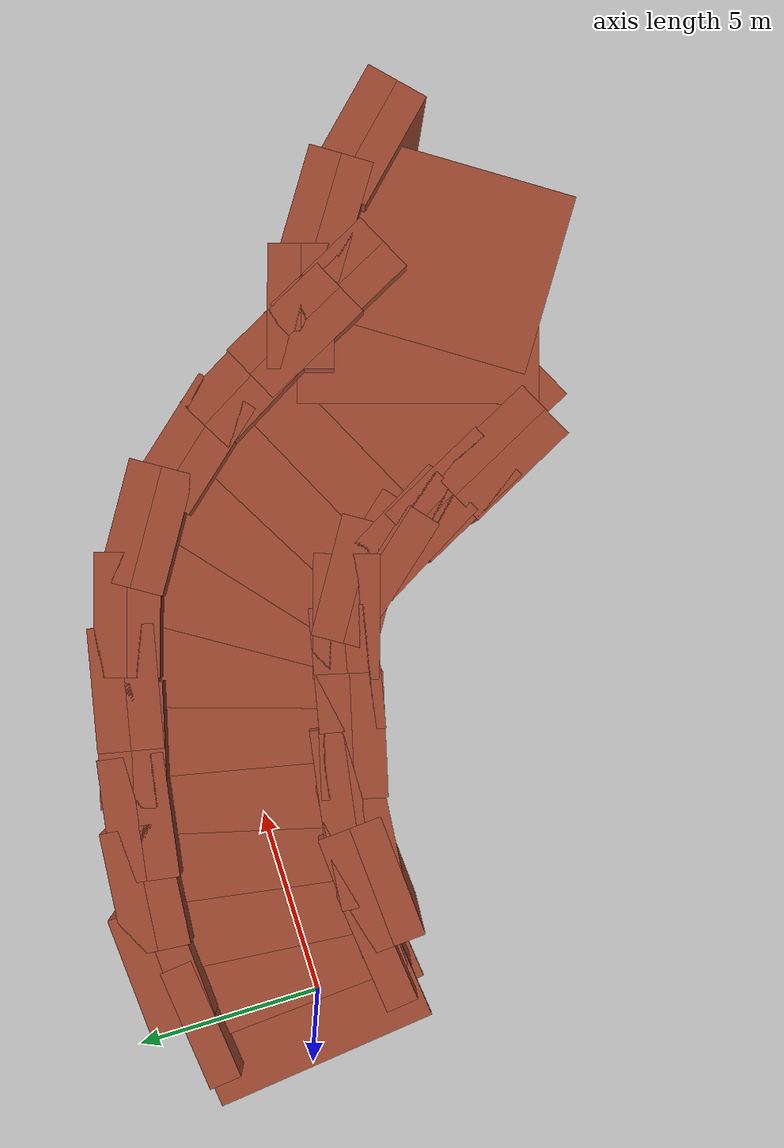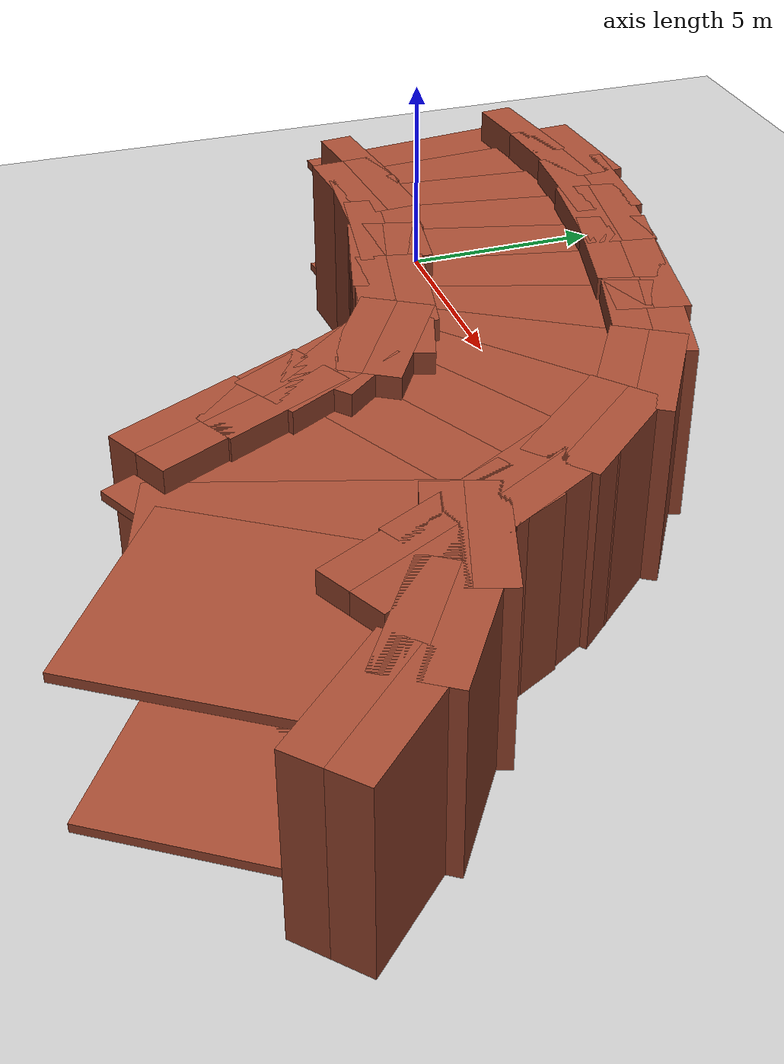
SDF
<sdf version="1.6">
 <world name="procedural_cave_world">
  <include><uri>model://sun</uri></include>
  <include><uri>model://ground_plane</uri></include>
  <model name="procedural_cave">
   <static>true</static>
   <link name="left_wall_0">
    <pose>1.224523597467146 2.4564252081160305 1.5 0 0 0.11573853253283148</pose>
    <collision name="collision"><geometry><box><size>3.0 0.8 5.0</size></box></geometry></collision>
    <visual name="visual">
     <geometry><box><size>3.0 0.8 5.0</size></box></geometry>
     <material>
      <script><uri>file://media/materials/scripts/gazebo.material</uri><name>Gazebo/Bricks</name></script>
     </material>
    </visual>
   </link>
   <link name="right_wall_0">
    <pose>1.7554057102699834 -2.109984273916111 1.5 0 0 0.11573853253283148</pose>
    <collision name="collision"><geometry><box><size>3.0 0.8 5.0</size></box></geometry></collision>
    <visual name="visual">
     <geometry><box><size>3.0 0.8 5.0</size></box></geometry>
     <material>
      <script><uri>file://media/materials/scripts/gazebo.material</uri><name>Gazebo/Bricks</name></script>
     </material>
    </visual>
   </link>
   <link name="ceiling_0">
    <pose>1.4899646538685647 0.17322046709995959 3.1 0 0 0.11573853253283148</pose>
    <collision name="collision"><geometry><box><size>4.5 5.597165580581915 0.2</size></box></geometry></collision>
    <visual name="visual">
     <geometry><box><size>4.5 5.597165580581915 0.2</size></box></geometry>
     <material>
      <script><uri>file://media/materials/scripts/gazebo.material</uri><name>Gazebo/Bricks</name></script>
     </material>
    </visual>
   </link>
   <link name="floor_0">
    <pose>1.4899646538685647 0.17322046709995959 0.1 0 0 0.11573853253283148</pose>
    <collision name="collision"><geometry><box><size>4.5 5.597165580581915 0.2</size></box></geometry></collision>
    <visual name="visual">
     <geometry><box><size>4.5 5.597165580581915 0.2</size></box></geometry>
     <material>
      <script><uri>file://media/materials/scripts/gazebo.material</uri><name>Gazebo/Bricks</name></script>
     </material>
    </visual>
   </link>
   <link name="left_wall_1">
    <pose>2.8282510521473587 2.5573240663752075 1.5 0 0 0.06922987092913153</pose>
    <collision name="collision"><geometry><box><size>3.0 0.8 5.0</size></box></geometry></collision>
    <visual name="visual">
     <geometry><box><size>3.0 0.8 5.0</size></box></geometry>
     <material>
      <script><uri>file://media/materials/scripts/gazebo.material</uri><name>Gazebo/Bricks</name></script>
     </material>
    </visual>
   </link>
   <link name="right_wall_1">
    <pose>3.144491963924351 -2.0033593812342985 1.5 0 0 0.06922987092913153</pose>
    <collision name="collision"><geometry><box><size>3.0 0.8 5.0</size></box></geometry></collision>
    <visual name="visual">
     <geometry><box><size>3.0 0.8 5.0</size></box></geometry>
     <material>
      <script><uri>file://media/materials/scripts/gazebo.material</uri><name>Gazebo/Bricks</name></script>
     </material>
    </visual>
   </link>
   <link name="fill_left_1">
    <pose>2.7729113852297615 3.355407721931096 1.5 0 0 0.06922987092913153</pose>
    <collision name="collision"><geometry><box><size>3.0 0.8 5.0</size></box></geometry></collision>
    <visual name="visual">
     <geometry><box><size>3.0 0.8 5.0</size></box></geometry>
     <material>
      <script><uri>file://media/materials/scripts/gazebo.material</uri><name>Gazebo/Bricks</name></script>
     </material>
    </visual>
   </link>
   <link name="fill_right_1">
    <pose>3.199831630841948 -2.801443036790187 1.5 0 0 0.06922987092913153</pose>
    <collision name="collision"><geometry><box><size>3.0 0.8 5.0</size></box></geometry></collision>
    <visual name="visual">
     <geometry><box><size>3.0 0.8 5.0</size></box></geometry>
     <material>
      <script><uri>file://media/materials/scripts/gazebo.material</uri><name>Gazebo/Bricks</name></script>
     </material>
    </visual>
   </link>
   <link name="ceiling_1">
    <pose>2.986371508035855 0.27698234257045445 3.22 0 0 0.06922987092913153</pose>
    <collision name="collision">
     <geometry><box><size>4.5 5.5716344805311016 0.2</size></box></geometry>
    </collision>
    <visual name="visual">
     <geometry><box><size>4.5 5.5716344805311016 0.2</size></box></geometry>
     <material>
      <script><uri>file://media/materials/scripts/gazebo.material</uri><name>Gazebo/Bricks</name></script>
     </material>
    </visual>
   </link>
   <link name="floor_1">
    <pose>2.986371508035855 0.27698234257045445 0.1 0 0 0.06922987092913153</pose>
    <collision name="collision">
     <geometry><box><size>4.5 5.5716344805311016 0.2</size></box></geometry>
    </collision>
    <visual name="visual">
     <geometry><box><size>4.5 5.5716344805311016 0.2</size></box></geometry>
     <material>
      <script><uri>file://media/materials/scripts/gazebo.material</uri><name>Gazebo/Bricks</name></script>
     </material>
    </visual>
   </link>
   <link name="left_wall_2">
    <pose>4.67265879498337 2.382047039975188 1.5 0 0 -0.08566222407151684</pose>
    <collision name="collision"><geometry><box><size>3.0 0.8 5.0</size></box></geometry></collision>
    <visual name="visual">
     <geometry><box><size>3.0 0.8 5.0</size></box></geometry>
     <material>
      <script><uri>file://media/materials/scripts/gazebo.material</uri><name>Gazebo/Bricks</name></script>
     </material>
    </visual>
   </link>
   <link name="right_wall_2">
    <pose>4.28908392530389 -2.0847548469314092 1.5 0 0 -0.08566222407151684</pose>
    <collision name="collision"><geometry><box><size>3.0 0.8 5.0</size></box></geometry></collision>
    <visual name="visual">
     <geometry><box><size>3.0 0.8 5.0</size></box></geometry>
     <material>
      <script><uri>file://media/materials/scripts/gazebo.material</uri><name>Gazebo/Bricks</name></script>
     </material>
    </visual>
   </link>
   <link name="fill_left_2">
    <pose>4.741104792875937 3.179113627766001 1.5 0 0 -0.08566222407151684</pose>
    <collision name="collision"><geometry><box><size>3.0 0.8 5.0</size></box></geometry></collision>
    <visual name="visual">
     <geometry><box><size>3.0 0.8 5.0</size></box></geometry>
     <material>
      <script><uri>file://media/materials/scripts/gazebo.material</uri><name>Gazebo/Bricks</name></script>
     </material>
    </visual>
   </link>
   <link name="fill_right_2">
    <pose>4.220637927411323 -2.881821434722222 1.5 0 0 -0.08566222407151684</pose>
    <collision name="collision"><geometry><box><size>3.0 0.8 5.0</size></box></geometry></collision>
    <visual name="visual">
     <geometry><box><size>3.0 0.8 5.0</size></box></geometry>
     <material>
      <script><uri>file://media/materials/scripts/gazebo.material</uri><name>Gazebo/Bricks</name></script>
     </material>
    </visual>
   </link>
   <link name="ceiling_2">
    <pose>4.48087136014363 0.14864609652188923 3.2920000000000003 0 0 -0.08566222407151684</pose>
    <collision name="collision"><geometry><box><size>4.5 5.483240878819915 0.2</size></box></geometry></collision>
    <visual name="visual">
     <geometry><box><size>4.5 5.483240878819915 0.2</size></box></geometry>
     <material>
      <script><uri>file://media/materials/scripts/gazebo.material</uri><name>Gazebo/Bricks</name></script>
     </material>
    </visual>
   </link>
   <link name="floor_2">
    <pose>4.48087136014363 0.14864609652188923 0.1 0 0 -0.08566222407151684</pose>
    <collision name="collision"><geometry><box><size>4.5 5.483240878819915 0.2</size></box></geometry></collision>
    <visual name="visual">
     <geometry><box><size>4.5 5.483240878819915 0.2</size></box></geometry>
     <material>
      <script><uri>file://media/materials/scripts/gazebo.material</uri><name>Gazebo/Bricks</name></script>
     </material>
    </visual>
   </link>
   <link name="left_wall_3">
    <pose>6.301181151216998 2.0507735075568085 1.5 0 0 -0.15723699775955097</pose>
    <collision name="collision"><geometry><box><size>3.0 0.8 5.0</size></box></geometry></collision>
    <visual name="visual">
     <geometry><box><size>3.0 0.8 5.0</size></box></geometry>
     <material>
      <script><uri>file://media/materials/scripts/gazebo.material</uri><name>Gazebo/Bricks</name></script>
     </material>
    </visual>
   </link>
   <link name="right_wall_3">
    <pose>5.623552702201307 -2.2232509867853176 1.5 0 0 -0.15723699775955097</pose>
    <collision name="collision"><geometry><box><size>3.0 0.8 5.0</size></box></geometry></collision>
    <visual name="visual">
     <geometry><box><size>3.0 0.8 5.0</size></box></geometry>
     <material>
      <script><uri>file://media/materials/scripts/gazebo.material</uri><name>Gazebo/Bricks</name></script>
     </material>
    </visual>
   </link>
   <link name="fill_left_3">
    <pose>6.426453063822941 2.8409044763917537 1.5 0 0 -0.15723699775955097</pose>
    <collision name="collision"><geometry><box><size>3.0 0.8 5.0</size></box></geometry></collision>
    <visual name="visual">
     <geometry><box><size>3.0 0.8 5.0</size></box></geometry>
     <material>
      <script><uri>file://media/materials/scripts/gazebo.material</uri><name>Gazebo/Bricks</name></script>
     </material>
    </visual>
   </link>
   <link name="fill_right_3">
    <pose>5.498280789595364 -3.013381955620263 1.5 0 0 -0.15723699775955097</pose>
    <collision name="collision"><geometry><box><size>3.0 0.8 5.0</size></box></geometry></collision>
    <visual name="visual">
     <geometry><box><size>3.0 0.8 5.0</size></box></geometry>
     <material>
      <script><uri>file://media/materials/scripts/gazebo.material</uri><name>Gazebo/Bricks</name></script>
     </material>
    </visual>
   </link>
   <link name="ceiling_3">
    <pose>5.962366926709152 -0.08623873961425474 3.3352 0 0 -0.15723699775955097</pose>
    <collision name="collision">
     <geometry><box><size>4.5 5.3274086579790305 0.2</size></box></geometry>
    </collision>
    <visual name="visual">
     <geometry><box><size>4.5 5.3274086579790305 0.2</size></box></geometry>
     <material>
      <script><uri>file://media/materials/scripts/gazebo.material</uri><name>Gazebo/Bricks</name></script>
     </material>
    </visual>
   </link>
   <link name="floor_3">
    <pose>5.962366926709152 -0.08623873961425474 0.1 0 0 -0.15723699775955097</pose>
    <collision name="collision">
     <geometry><box><size>4.5 5.3274086579790305 0.2</size></box></geometry>
    </collision>
    <visual name="visual">
     <geometry><box><size>4.5 5.3274086579790305 0.2</size></box></geometry>
     <material>
      <script><uri>file://media/materials/scripts/gazebo.material</uri><name>Gazebo/Bricks</name></script>
     </material>
    </visual>
   </link>
   <link name="left_wall_4">
    <pose>7.972160272781874 1.7032153339422207 1.5 0 0 -0.25205845697423085</pose>
    <collision name="collision"><geometry><box><size>3.0 0.8 5.0</size></box></geometry></collision>
    <visual name="visual">
     <geometry><box><size>3.0 0.8 5.0</size></box></geometry>
     <material>
      <script><uri>file://media/materials/scripts/gazebo.material</uri><name>Gazebo/Bricks</name></script>
     </material>
    </visual>
   </link>
   <link name="right_wall_4">
    <pose>6.857776877354214 -2.6238865078381783 1.5 0 0 -0.25205845697423085</pose>
    <collision name="collision"><geometry><box><size>3.0 0.8 5.0</size></box></geometry></collision>
    <visual name="visual">
     <geometry><box><size>3.0 0.8 5.0</size></box></geometry>
     <material>
      <script><uri>file://media/materials/scripts/gazebo.material</uri><name>Gazebo/Bricks</name></script>
     </material>
    </visual>
   </link>
   <link name="fill_left_4">
    <pose>8.17167859135986 2.477936213066963 1.5 0 0 -0.25205845697423085</pose>
    <collision name="collision"><geometry><box><size>3.0 0.8 5.0</size></box></geometry></collision>
    <visual name="visual">
     <geometry><box><size>3.0 0.8 5.0</size></box></geometry>
     <material>
      <script><uri>file://media/materials/scripts/gazebo.material</uri><name>Gazebo/Bricks</name></script>
     </material>
    </visual>
   </link>
   <link name="fill_right_4">
    <pose>6.658258558776227 -3.3986073869629205 1.5 0 0 -0.25205845697423085</pose>
    <collision name="collision"><geometry><box><size>3.0 0.8 5.0</size></box></geometry></collision>
    <visual name="visual">
     <geometry><box><size>3.0 0.8 5.0</size></box></geometry>
     <material>
      <script><uri>file://media/materials/scripts/gazebo.material</uri><name>Gazebo/Bricks</name></script>
     </material>
    </visual>
   </link>
   <link name="ceiling_4">
    <pose>7.414968575068044 -0.46033558694797894 3.36112 0 0 -0.25205845697423085</pose>
    <collision name="collision"><geometry><box><size>4.5 5.468295055291694 0.2</size></box></geometry></collision>
    <visual name="visual">
     <geometry><box><size>4.5 5.468295055291694 0.2</size></box></geometry>
     <material>
      <script><uri>file://media/materials/scripts/gazebo.material</uri><name>Gazebo/Bricks</name></script>
     </material>
    </visual>
   </link>
   <link name="floor_4">
    <pose>7.414968575068044 -0.46033558694797894 0.1 0 0 -0.25205845697423085</pose>
    <collision name="collision"><geometry><box><size>4.5 5.468295055291694 0.2</size></box></geometry></collision>
    <visual name="visual">
     <geometry><box><size>4.5 5.468295055291694 0.2</size></box></geometry>
     <material>
      <script><uri>file://media/materials/scripts/gazebo.material</uri><name>Gazebo/Bricks</name></script>
     </material>
    </visual>
   </link>
   <link name="left_wall_5">
    <pose>9.345226092274107 1.4388276682660393 1.5 0 0 -0.2064345163576541</pose>
    <collision name="collision"><geometry><box><size>3.0 0.8 5.0</size></box></geometry></collision>
    <visual name="visual">
     <geometry><box><size>3.0 0.8 5.0</size></box></geometry>
     <material>
      <script><uri>file://media/materials/scripts/gazebo.material</uri><name>Gazebo/Bricks</name></script>
     </material>
    </visual>
   </link>
   <link name="right_wall_5">
    <pose>8.42101492833704 -2.9744131290615416 1.5 0 0 -0.2064345163576541</pose>
    <collision name="collision"><geometry><box><size>3.0 0.8 5.0</size></box></geometry></collision>
    <visual name="visual">
     <geometry><box><size>3.0 0.8 5.0</size></box></geometry>
     <material>
      <script><uri>file://media/materials/scripts/gazebo.material</uri><name>Gazebo/Bricks</name></script>
     </material>
    </visual>
   </link>
   <link name="fill_left_5">
    <pose>9.509203235447318 2.221842033726056 1.5 0 0 -0.2064345163576541</pose>
    <collision name="collision"><geometry><box><size>3.0 0.8 5.0</size></box></geometry></collision>
    <visual name="visual">
     <geometry><box><size>3.0 0.8 5.0</size></box></geometry>
     <material>
      <script><uri>file://media/materials/scripts/gazebo.material</uri><name>Gazebo/Bricks</name></script>
     </material>
    </visual>
   </link>
   <link name="fill_right_5">
    <pose>8.25703778516383 -3.757427494521558 1.5 0 0 -0.2064345163576541</pose>
    <collision name="collision"><geometry><box><size>3.0 0.8 5.0</size></box></geometry></collision>
    <visual name="visual">
     <geometry><box><size>3.0 0.8 5.0</size></box></geometry>
     <material>
      <script><uri>file://media/materials/scripts/gazebo.material</uri><name>Gazebo/Bricks</name></script>
     </material>
    </visual>
   </link>
   <link name="ceiling_5">
    <pose>8.883120510305574 -0.7677927303977511 3.3766719999999997 0 0 -0.2064345163576541</pose>
    <collision name="collision"><geometry><box><size>4.5 5.508975561116126 0.2</size></box></geometry></collision>
    <visual name="visual">
     <geometry><box><size>4.5 5.508975561116126 0.2</size></box></geometry>
     <material>
      <script><uri>file://media/materials/scripts/gazebo.material</uri><name>Gazebo/Bricks</name></script>
     </material>
    </visual>
   </link>
   <link name="floor_5">
    <pose>8.883120510305574 -0.7677927303977511 0.1 0 0 -0.2064345163576541</pose>
    <collision name="collision"><geometry><box><size>4.5 5.508975561116126 0.2</size></box></geometry></collision>
    <visual name="visual">
     <geometry><box><size>4.5 5.508975561116126 0.2</size></box></geometry>
     <material>
      <script><uri>file://media/materials/scripts/gazebo.material</uri><name>Gazebo/Bricks</name></script>
     </material>
    </visual>
   </link>
   <link name="left_wall_6">
    <pose>10.975940479146093 0.9026414170754393 1.5 0 0 -0.30257204073432453</pose>
    <collision name="collision"><geometry><box><size>3.0 0.8 5.0</size></box></geometry></collision>
    <visual name="visual">
     <geometry><box><size>3.0 0.8 5.0</size></box></geometry>
     <material>
      <script><uri>file://media/materials/scripts/gazebo.material</uri><name>Gazebo/Bricks</name></script>
     </material>
    </visual>
   </link>
   <link name="right_wall_6">
    <pose>9.654020261442941 -3.3321560503503793 1.5 0 0 -0.30257204073432453</pose>
    <collision name="collision"><geometry><box><size>3.0 0.8 5.0</size></box></geometry></collision>
    <visual name="visual">
     <geometry><box><size>3.0 0.8 5.0</size></box></geometry>
     <material>
      <script><uri>file://media/materials/scripts/gazebo.material</uri><name>Gazebo/Bricks</name></script>
     </material>
    </visual>
   </link>
   <link name="fill_left_6">
    <pose>11.214321591807277 1.6663000090695428 1.5 0 0 -0.30257204073432453</pose>
    <collision name="collision"><geometry><box><size>3.0 0.8 5.0</size></box></geometry></collision>
    <visual name="visual">
     <geometry><box><size>3.0 0.8 5.0</size></box></geometry>
     <material>
      <script><uri>file://media/materials/scripts/gazebo.material</uri><name>Gazebo/Bricks</name></script>
     </material>
    </visual>
   </link>
   <link name="fill_right_6">
    <pose>9.415639148781757 -4.095814642344482 1.5 0 0 -0.30257204073432453</pose>
    <collision name="collision"><geometry><box><size>3.0 0.8 5.0</size></box></geometry></collision>
    <visual name="visual">
     <geometry><box><size>3.0 0.8 5.0</size></box></geometry>
     <material>
      <script><uri>file://media/materials/scripts/gazebo.material</uri><name>Gazebo/Bricks</name></script>
     </material>
    </visual>
   </link>
   <link name="ceiling_6">
    <pose>10.314980370294517 -1.2147573166374699 3.3860031999999998 0 0 -0.30257204073432453</pose>
    <collision name="collision"><geometry><box><size>4.5 5.436325354624983 0.2</size></box></geometry></collision>
    <visual name="visual">
     <geometry><box><size>4.5 5.436325354624983 0.2</size></box></geometry>
     <material>
      <script><uri>file://media/materials/scripts/gazebo.material</uri><name>Gazebo/Bricks</name></script>
     </material>
    </visual>
   </link>
   <link name="floor_6">
    <pose>10.314980370294517 -1.2147573166374699 0.1 0 0 -0.30257204073432453</pose>
    <collision name="collision"><geometry><box><size>4.5 5.436325354624983 0.2</size></box></geometry></collision>
    <visual name="visual">
     <geometry><box><size>4.5 5.436325354624983 0.2</size></box></geometry>
     <material>
      <script><uri>file://media/materials/scripts/gazebo.material</uri><name>Gazebo/Bricks</name></script>
     </material>
    </visual>
   </link>
   <link name="left_wall_7">
    <pose>12.760485039966003 -0.1009287404537409 1.5 0 0 -0.5511974372785724</pose>
    <collision name="collision"><geometry><box><size>3.0 0.8 5.0</size></box></geometry></collision>
    <visual name="visual">
     <geometry><box><size>3.0 0.8 5.0</size></box></geometry>
     <material>
      <script><uri>file://media/materials/scripts/gazebo.material</uri><name>Gazebo/Bricks</name></script>
     </material>
    </visual>
   </link>
   <link name="right_wall_7">
    <pose>10.42516977813547 -3.8997089886249157 1.5 0 0 -0.5511974372785724</pose>
    <collision name="collision"><geometry><box><size>3.0 0.8 5.0</size></box></geometry></collision>
    <visual name="visual">
     <geometry><box><size>3.0 0.8 5.0</size></box></geometry>
     <material>
      <script><uri>file://media/materials/scripts/gazebo.material</uri><name>Gazebo/Bricks</name></script>
     </material>
    </visual>
   </link>
   <link name="fill_left_7">
    <pose>13.179451198846994 0.5805896802162422 1.5 0 0 -0.5511974372785724</pose>
    <collision name="collision"><geometry><box><size>3.0 0.8 5.0</size></box></geometry></collision>
    <visual name="visual">
     <geometry><box><size>3.0 0.8 5.0</size></box></geometry>
     <material>
      <script><uri>file://media/materials/scripts/gazebo.material</uri><name>Gazebo/Bricks</name></script>
     </material>
    </visual>
   </link>
   <link name="fill_right_7">
    <pose>10.006203619254478 -4.581227409294899 1.5 0 0 -0.5511974372785724</pose>
    <collision name="collision"><geometry><box><size>3.0 0.8 5.0</size></box></geometry></collision>
    <visual name="visual">
     <geometry><box><size>3.0 0.8 5.0</size></box></geometry>
     <material>
      <script><uri>file://media/materials/scripts/gazebo.material</uri><name>Gazebo/Bricks</name></script>
     </material>
    </visual>
   </link>
   <link name="ceiling_7">
    <pose>11.592827409050736 -2.000318864539328 3.39160192 0 0 -0.5511974372785724</pose>
    <collision name="collision"><geometry><box><size>4.5 5.459195975289051 0.2</size></box></geometry></collision>
    <visual name="visual">
     <geometry><box><size>4.5 5.459195975289051 0.2</size></box></geometry>
     <material>
      <script><uri>file://media/materials/scripts/gazebo.material</uri><name>Gazebo/Bricks</name></script>
     </material>
    </visual>
   </link>
   <link name="floor_7">
    <pose>11.592827409050736 -2.000318864539328 0.1 0 0 -0.5511974372785724</pose>
    <collision name="collision"><geometry><box><size>4.5 5.459195975289051 0.2</size></box></geometry></collision>
    <visual name="visual">
     <geometry><box><size>4.5 5.459195975289051 0.2</size></box></geometry>
     <material>
      <script><uri>file://media/materials/scripts/gazebo.material</uri><name>Gazebo/Bricks</name></script>
     </material>
    </visual>
   </link>
   <link name="left_wall_8">
    <pose>14.23462658148497 -1.6995367598341604 1.5 0 0 -0.858025921734783</pose>
    <collision name="collision"><geometry><box><size>3.0 0.8 5.0</size></box></geometry></collision>
    <visual name="visual">
     <geometry><box><size>3.0 0.8 5.0</size></box></geometry>
     <material>
      <script><uri>file://media/materials/scripts/gazebo.material</uri><name>Gazebo/Bricks</name></script>
     </material>
    </visual>
   </link>
   <link name="right_wall_8">
    <pose>10.912824945981939 -4.570760342613756 1.5 0 0 -0.858025921734783</pose>
    <collision name="collision"><geometry><box><size>3.0 0.8 5.0</size></box></geometry></collision>
    <visual name="visual">
     <geometry><box><size>3.0 0.8 5.0</size></box></geometry>
     <material>
      <script><uri>file://media/materials/scripts/gazebo.material</uri><name>Gazebo/Bricks</name></script>
     </material>
    </visual>
   </link>
   <link name="fill_left_8">
    <pose>14.839869081050107 -1.176390970670044 1.5 0 0 -0.858025921734783</pose>
    <collision name="collision"><geometry><box><size>3.0 0.8 5.0</size></box></geometry></collision>
    <visual name="visual">
     <geometry><box><size>3.0 0.8 5.0</size></box></geometry>
     <material>
      <script><uri>file://media/materials/scripts/gazebo.material</uri><name>Gazebo/Bricks</name></script>
     </material>
    </visual>
   </link>
   <link name="fill_right_8">
    <pose>10.307582446416802 -5.093906131777873 1.5 0 0 -0.858025921734783</pose>
    <collision name="collision"><geometry><box><size>3.0 0.8 5.0</size></box></geometry></collision>
    <visual name="visual">
     <geometry><box><size>3.0 0.8 5.0</size></box></geometry>
     <material>
      <script><uri>file://media/materials/scripts/gazebo.material</uri><name>Gazebo/Bricks</name></script>
     </material>
    </visual>
   </link>
   <link name="ceiling_8">
    <pose>12.573725763733455 -3.135148551223958 3.394961152 0 0 -0.858025921734783</pose>
    <collision name="collision">
     <geometry><box><size>4.5 5.3907050650140835 0.2</size></box></geometry>
    </collision>
    <visual name="visual">
     <geometry><box><size>4.5 5.3907050650140835 0.2</size></box></geometry>
     <material>
      <script><uri>file://media/materials/scripts/gazebo.material</uri><name>Gazebo/Bricks</name></script>
     </material>
    </visual>
   </link>
   <link name="floor_8">
    <pose>12.573725763733455 -3.135148551223958 0.1 0 0 -0.858025921734783</pose>
    <collision name="collision">
     <geometry><box><size>4.5 5.3907050650140835 0.2</size></box></geometry>
    </collision>
    <visual name="visual">
     <geometry><box><size>4.5 5.3907050650140835 0.2</size></box></geometry>
     <material>
      <script><uri>file://media/materials/scripts/gazebo.material</uri><name>Gazebo/Bricks</name></script>
     </material>
    </visual>
   </link>
   <link name="left_wall_9">
    <pose>15.289900548992929 -3.307481750077197 1.5 0 0 -1.0504297247273167</pose>
    <collision name="collision"><geometry><box><size>3.0 0.8 5.0</size></box></geometry></collision>
    <visual name="visual">
     <geometry><box><size>3.0 0.8 5.0</size></box></geometry>
     <material>
      <script><uri>file://media/materials/scripts/gazebo.material</uri><name>Gazebo/Bricks</name></script>
     </material>
    </visual>
   </link>
   <link name="right_wall_9">
    <pose>11.349145724731624 -5.5657262446097535 1.5 0 0 -1.0504297247273167</pose>
    <collision name="collision"><geometry><box><size>3.0 0.8 5.0</size></box></geometry></collision>
    <visual name="visual">
     <geometry><box><size>3.0 0.8 5.0</size></box></geometry>
     <material>
      <script><uri>file://media/materials/scripts/gazebo.material</uri><name>Gazebo/Bricks</name></script>
     </material>
    </visual>
   </link>
   <link name="fill_left_9">
    <pose>15.984010120256672 -2.909723151075159 1.5 0 0 -1.0504297247273167</pose>
    <collision name="collision"><geometry><box><size>3.0 0.8 5.0</size></box></geometry></collision>
    <visual name="visual">
     <geometry><box><size>3.0 0.8 5.0</size></box></geometry>
     <material>
      <script><uri>file://media/materials/scripts/gazebo.material</uri><name>Gazebo/Bricks</name></script>
     </material>
    </visual>
   </link>
   <link name="fill_right_9">
    <pose>10.655036153467881 -5.963484843611791 1.5 0 0 -1.0504297247273167</pose>
    <collision name="collision"><geometry><box><size>3.0 0.8 5.0</size></box></geometry></collision>
    <visual name="visual">
     <geometry><box><size>3.0 0.8 5.0</size></box></geometry>
     <material>
      <script><uri>file://media/materials/scripts/gazebo.material</uri><name>Gazebo/Bricks</name></script>
     </material>
    </visual>
   </link>
   <link name="ceiling_9">
    <pose>13.319523136862276 -4.436603997343475 3.3969766912000003 0 0 -1.0504297247273167</pose>
    <collision name="collision"><geometry><box><size>4.5 5.541939759841092 0.2</size></box></geometry></collision>
    <visual name="visual">
     <geometry><box><size>4.5 5.541939759841092 0.2</size></box></geometry>
     <material>
      <script><uri>file://media/materials/scripts/gazebo.material</uri><name>Gazebo/Bricks</name></script>
     </material>
    </visual>
   </link>
   <link name="floor_9">
    <pose>13.319523136862276 -4.436603997343475 0.1 0 0 -1.0504297247273167</pose>
    <collision name="collision"><geometry><box><size>4.5 5.541939759841092 0.2</size></box></geometry></collision>
    <visual name="visual">
     <geometry><box><size>4.5 5.541939759841092 0.2</size></box></geometry>
     <material>
      <script><uri>file://media/materials/scripts/gazebo.material</uri><name>Gazebo/Bricks</name></script>
     </material>
    </visual>
   </link>
   <link name="left_wall_10">
    <pose>16.071593146358804 -4.718998116915573 1.5 0 0 -1.1</pose>
    <collision name="collision"><geometry><box><size>3.0 0.8 5.0</size></box></geometry></collision>
    <visual name="visual">
     <geometry><box><size>3.0 0.8 5.0</size></box></geometry>
     <material>
      <script><uri>file://media/materials/scripts/gazebo.material</uri><name>Gazebo/Bricks</name></script>
     </material>
    </visual>
   </link>
   <link name="right_wall_10">
    <pose>11.92824149164248 -6.8278319579556825 1.5 0 0 -1.1</pose>
    <collision name="collision"><geometry><box><size>3.0 0.8 5.0</size></box></geometry></collision>
    <visual name="visual">
     <geometry><box><size>3.0 0.8 5.0</size></box></geometry>
     <material>
      <script><uri>file://media/materials/scripts/gazebo.material</uri><name>Gazebo/Bricks</name></script>
     </material>
    </visual>
   </link>
   <link name="fill_left_10">
    <pose>16.784559034407955 -4.356121219775111 1.5 0 0 -1.1</pose>
    <collision name="collision"><geometry><box><size>3.0 0.8 5.0</size></box></geometry></collision>
    <visual name="visual">
     <geometry><box><size>3.0 0.8 5.0</size></box></geometry>
     <material>
      <script><uri>file://media/materials/scripts/gazebo.material</uri><name>Gazebo/Bricks</name></script>
     </material>
    </visual>
   </link>
   <link name="fill_right_10">
    <pose>11.215275603593332 -7.190708855096145 1.5 0 0 -1.1</pose>
    <collision name="collision"><geometry><box><size>3.0 0.8 5.0</size></box></geometry></collision>
    <visual name="visual">
     <geometry><box><size>3.0 0.8 5.0</size></box></geometry>
     <material>
      <script><uri>file://media/materials/scripts/gazebo.material</uri><name>Gazebo/Bricks</name></script>
     </material>
    </visual>
   </link>
   <link name="ceiling_10">
    <pose>13.999917319000643 -5.773415037435628 3.39818601472 0 0 -1.1</pose>
    <collision name="collision"><geometry><box><size>4.5 5.649144341032713 0.2</size></box></geometry></collision>
    <visual name="visual">
     <geometry><box><size>4.5 5.649144341032713 0.2</size></box></geometry>
     <material>
      <script><uri>file://media/materials/scripts/gazebo.material</uri><name>Gazebo/Bricks</name></script>
     </material>
    </visual>
   </link>
   <link name="floor_10">
    <pose>13.999917319000643 -5.773415037435628 0.1 0 0 -1.1</pose>
    <collision name="collision"><geometry><box><size>4.5 5.649144341032713 0.2</size></box></geometry></collision>
    <visual name="visual">
     <geometry><box><size>4.5 5.649144341032713 0.2</size></box></geometry>
     <material>
      <script><uri>file://media/materials/scripts/gazebo.material</uri><name>Gazebo/Bricks</name></script>
     </material>
    </visual>
   </link>
   <link name="left_wall_11">
    <pose>16.80622322821062 -6.028204813894637 1.5 0 0 -1.1</pose>
    <collision name="collision"><geometry><box><size>3.0 0.8 5.0</size></box></geometry></collision>
    <visual name="visual">
     <geometry><box><size>3.0 0.8 5.0</size></box></geometry>
     <material>
      <script><uri>file://media/materials/scripts/gazebo.material</uri><name>Gazebo/Bricks</name></script>
     </material>
    </visual>
   </link>
   <link name="right_wall_11">
    <pose>12.554399774067399 -8.192247341160924 1.5 0 0 -1.1</pose>
    <collision name="collision"><geometry><box><size>3.0 0.8 5.0</size></box></geometry></collision>
    <visual name="visual">
     <geometry><box><size>3.0 0.8 5.0</size></box></geometry>
     <material>
      <script><uri>file://media/materials/scripts/gazebo.material</uri><name>Gazebo/Bricks</name></script>
     </material>
    </visual>
   </link>
   <link name="fill_left_11">
    <pose>17.519189116259767 -5.665327916754175 1.5 0 0 -1.1</pose>
    <collision name="collision"><geometry><box><size>3.0 0.8 5.0</size></box></geometry></collision>
    <visual name="visual">
     <geometry><box><size>3.0 0.8 5.0</size></box></geometry>
     <material>
      <script><uri>file://media/materials/scripts/gazebo.material</uri><name>Gazebo/Bricks</name></script>
     </material>
    </visual>
   </link>
   <link name="fill_right_11">
    <pose>11.841433886018251 -8.555124238301387 1.5 0 0 -1.1</pose>
    <collision name="collision"><geometry><box><size>3.0 0.8 5.0</size></box></geometry></collision>
    <visual name="visual">
     <geometry><box><size>3.0 0.8 5.0</size></box></geometry>
     <material>
      <script><uri>file://media/materials/scripts/gazebo.material</uri><name>Gazebo/Bricks</name></script>
     </material>
    </visual>
   </link>
   <link name="ceiling_11">
    <pose>14.680311501139009 -7.110226077527781 3.3989116088319995 0 0 -1.1</pose>
    <collision name="collision"><geometry><box><size>4.5 5.770857652982263 0.2</size></box></geometry></collision>
    <visual name="visual">
     <geometry><box><size>4.5 5.770857652982263 0.2</size></box></geometry>
     <material>
      <script><uri>file://media/materials/scripts/gazebo.material</uri><name>Gazebo/Bricks</name></script>
     </material>
    </visual>
   </link>
   <link name="floor_11">
    <pose>14.680311501139009 -7.110226077527781 0.1 0 0 -1.1</pose>
    <collision name="collision"><geometry><box><size>4.5 5.770857652982263 0.2</size></box></geometry></collision>
    <visual name="visual">
     <geometry><box><size>4.5 5.770857652982263 0.2</size></box></geometry>
     <material>
      <script><uri>file://media/materials/scripts/gazebo.material</uri><name>Gazebo/Bricks</name></script>
     </material>
    </visual>
   </link>
   <link name="left_wall_12">
    <pose>16.83460122444862 -5.221788101895491 1.5 0 0 -0.30000000000000004</pose>
    <collision name="collision"><geometry><box><size>3.0 0.8 5.0</size></box></geometry></collision>
    <visual name="visual">
     <geometry><box><size>3.0 0.8 5.0</size></box></geometry>
     <material>
      <script><uri>file://media/materials/scripts/gazebo.material</uri><name>Gazebo/Bricks</name></script>
     </material>
    </visual>
   </link>
   <link name="fill_left_12">
    <pose>17.07101738977769 -4.457518910595008 1.5 0 0 -0.30000000000000004</pose>
    <collision name="collision"><geometry><box><size>3.0 0.8 5.0</size></box></geometry></collision>
    <visual name="visual">
     <geometry><box><size>3.0 0.8 5.0</size></box></geometry>
     <material>
      <script><uri>file://media/materials/scripts/gazebo.material</uri><name>Gazebo/Bricks</name></script>
     </material>
    </visual>
   </link>
   <link name="ceiling_12">
    <pose>16.11331623482742 -7.55350638751979 3.3993469652991997 0 0 -0.30000000000000004</pose>
    <collision name="collision"><geometry><box><size>4.5 5.881459699625747 0.2</size></box></geometry></collision>
    <visual name="visual">
     <geometry><box><size>4.5 5.881459699625747 0.2</size></box></geometry>
     <material>
      <script><uri>file://media/materials/scripts/gazebo.material</uri><name>Gazebo/Bricks</name></script>
     </material>
    </visual>
   </link>
   <link name="floor_12">
    <pose>16.11331623482742 -7.55350638751979 0.1 0 0 -0.30000000000000004</pose>
    <collision name="collision"><geometry><box><size>4.5 5.881459699625747 0.2</size></box></geometry></collision>
    <visual name="visual">
     <geometry><box><size>4.5 5.881459699625747 0.2</size></box></geometry>
     <material>
      <script><uri>file://media/materials/scripts/gazebo.material</uri><name>Gazebo/Bricks</name></script>
     </material>
    </visual>
   </link>
   <link name="obs_stone_12">
    <pose>16.11331623482742 -9.206904686108583 2.309884093677302 0 0 1.8203498281922732</pose>
    <collision name="collision">
     <geometry><box><size>0.3128656533789459 0.4193718879768795 2.378925743243795</size></box></geometry>
    </collision>
    <visual name="visual">
     <geometry><box><size>0.44880358449901336 0.3698835056550585 2.378925743243795</size></box></geometry>
     <material>
      <script><uri>file://media/materials/scripts/gazebo.material</uri><name>Gazebo/Wood</name></script>
     </material>
    </visual>
   </link>
   <link name="left_wall_13">
    <pose>18.692086865937224 -6.3543426534960155 1.5 0 0 -0.5799482193392328</pose>
    <collision name="collision"><geometry><box><size>3.0 0.8 5.0</size></box></geometry></collision>
    <visual name="visual">
     <geometry><box><size>3.0 0.8 5.0</size></box></geometry>
     <material>
      <script><uri>file://media/materials/scripts/gazebo.material</uri><name>Gazebo/Bricks</name></script>
     </material>
    </visual>
   </link>
   <link name="fill_left_13">
    <pose>19.130471364712008 -5.685149832827728 1.5 0 0 -0.5799482193392328</pose>
    <collision name="collision"><geometry><box><size>3.0 0.8 5.0</size></box></geometry></collision>
    <visual name="visual">
     <geometry><box><size>3.0 0.8 5.0</size></box></geometry>
     <material>
      <script><uri>file://media/materials/scripts/gazebo.material</uri><name>Gazebo/Bricks</name></script>
     </material>
    </visual>
   </link>
   <link name="ceiling_13">
    <pose>17.36805277358046 -8.375477322722514 3.3996081791795194 0 0 -0.5799482193392328</pose>
    <collision name="collision"><geometry><box><size>4.5 5.832412080471743 0.2</size></box></geometry></collision>
    <visual name="visual">
     <geometry><box><size>4.5 5.832412080471743 0.2</size></box></geometry>
     <material>
      <script><uri>file://media/materials/scripts/gazebo.material</uri><name>Gazebo/Bricks</name></script>
     </material>
    </visual>
   </link>
   <link name="floor_13">
    <pose>17.36805277358046 -8.375477322722514 0.1 0 0 -0.5799482193392328</pose>
    <collision name="collision"><geometry><box><size>4.5 5.832412080471743 0.2</size></box></geometry></collision>
    <visual name="visual">
     <geometry><box><size>4.5 5.832412080471743 0.2</size></box></geometry>
     <material>
      <script><uri>file://media/materials/scripts/gazebo.material</uri><name>Gazebo/Bricks</name></script>
     </material>
    </visual>
   </link>
   <link name="left_wall_14">
    <pose>20.116610353974398 -7.824920602855085 1.5 0 0 -0.8084657183683084</pose>
    <collision name="collision"><geometry><box><size>3.0 0.8 5.0</size></box></geometry></collision>
    <visual name="visual">
     <geometry><box><size>3.0 0.8 5.0</size></box></geometry>
     <material>
      <script><uri>file://media/materials/scripts/gazebo.material</uri><name>Gazebo/Bricks</name></script>
     </material>
    </visual>
   </link>
   <link name="fill_left_14">
    <pose>20.695193103983442 -7.272433497673461 1.5 0 0 -0.8084657183683084</pose>
    <collision name="collision"><geometry><box><size>3.0 0.8 5.0</size></box></geometry></collision>
    <visual name="visual">
     <geometry><box><size>3.0 0.8 5.0</size></box></geometry>
     <material>
      <script><uri>file://media/materials/scripts/gazebo.material</uri><name>Gazebo/Bricks</name></script>
     </material>
    </visual>
   </link>
  </model>
 </world>
</sdf>
